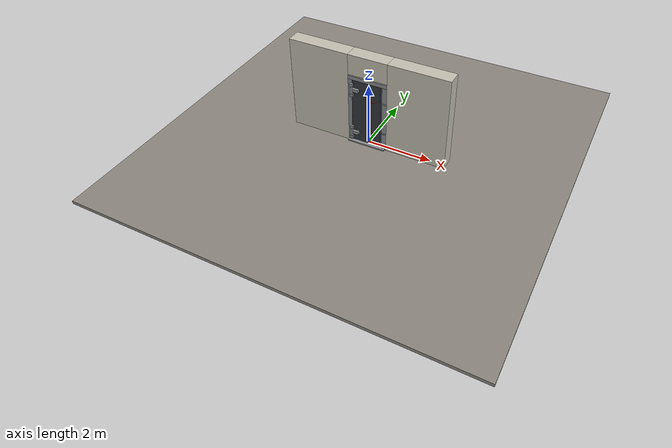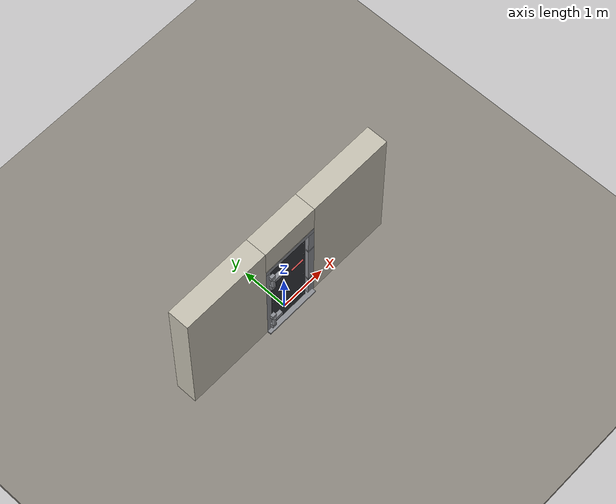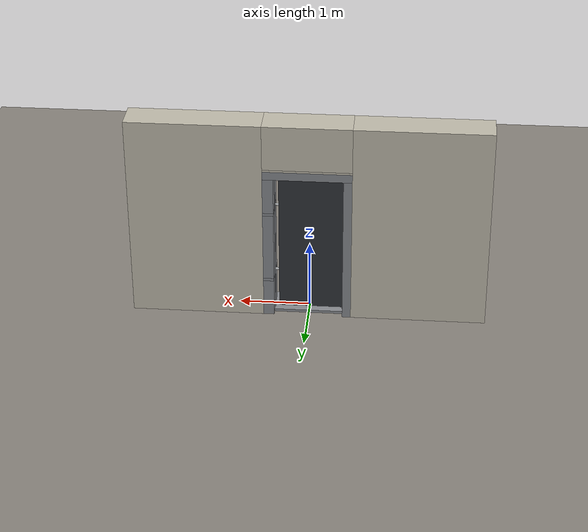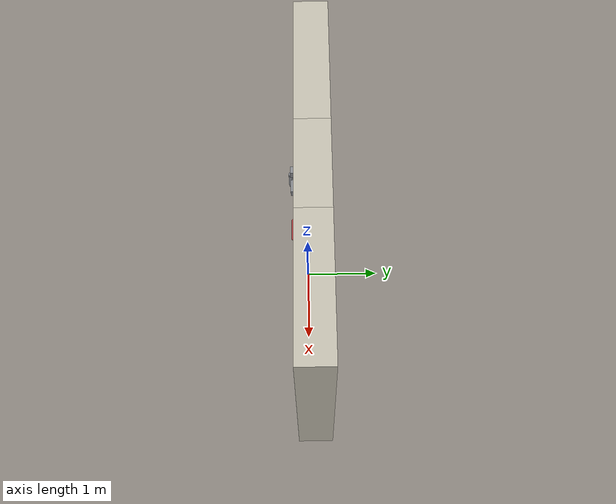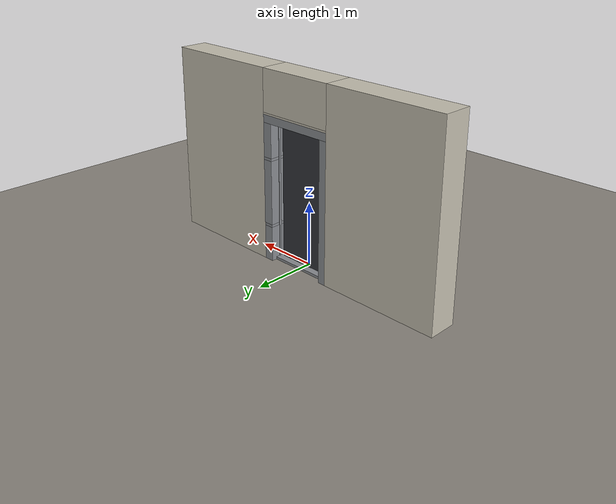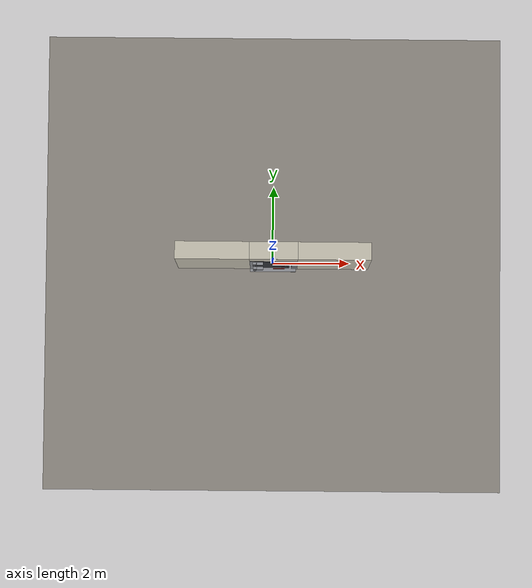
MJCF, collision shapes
<?xml version="1.0" ?>
<mujoco model="db0124_vault_full">
  <compiler angle="radian" meshdir="../../hardware" texturedir="../../textures" autolimits="true" inertiafromgeom="false"/>
  <option timestep="0.002" integrator="implicitfast" cone="elliptic" impratio="10" noslip_iterations="3">
    <flag multiccd="enable"/>
  </option>
  <size memory="16M"/>
  <default>
    <geom condim="4" solref="0.005 1" solimp="0.95 0.99 0.001"/>
    <joint solreflimit="0.005 1" solimplimit="0.95 0.99 0.001"/>
    <tendon solreflimit="0.005 1"/>
    <equality solref="0.002 1"/>
  </default>
  <visual>
    <headlight ambient="0.4 0.4 0.4" diffuse="0.7 0.7 0.7" specular="0.2 0.2 0.2"/>
    <quality shadowsize="4096"/>
    <map znear="0.01" zfar="60"/>
  </visual>
  <asset>
    <mesh name="lever_c7a1f2892f" file="lever_c7a1f2892f.obj"/>
    <material name="mat_floor" rgba="0.55 0.53 0.5 1" specular="0.2" shininess="0.15" reflectance="0"/>
    <material name="mat_wall" rgba="0.78 0.76 0.7 1" specular="0.2" shininess="0.1" reflectance="0"/>
    <material name="mat_leaf" rgba="0.2 0.21 0.23 1" specular="0.23" shininess="0.6" reflectance="0.02"/>
    <material name="mat_rivet" rgba="0.55 0.56 0.58 1" specular="0.8" shininess="0.55" reflectance="0.4"/>
    <material name="mat_op_nickel_satin" rgba="0.72 0.7 0.66 1" specular="0.8" shininess="0.65" reflectance="0.4"/>
    <material name="mat_vault_bolt" rgba="0.75 0.76 0.77 1" specular="0.8" shininess="0.65" reflectance="0.4"/>
    <material name="mat_frame" rgba="0.55 0.56 0.58 1" specular="0.8" shininess="0.55" reflectance="0.4"/>
    <material name="mat_seal" rgba="0.1 0.1 0.1 1" specular="0.2" shininess="0.1" reflectance="0"/>
    <material name="mat_hinge" rgba="0.55 0.56 0.58 1" specular="0.8" shininess="0.55" reflectance="0.4"/>
    <texture name="skybox" type="skybox" builtin="gradient" rgb1="0.6 0.7 0.85" rgb2="0.9 0.92 0.95" width="256" height="256"/>
  </asset>
  <worldbody>
    <light name="sun" pos="1.5 -2.5 4" dir="-0.3 0.5 -0.8" directional="true" diffuse="0.8 0.8 0.8" specular="0.3 0.3 0.3" castshadow="true"/>
    <light name="fill" pos="-1.5 2.5 3" dir="0.3 -0.5 -0.7" directional="true" diffuse="0.35 0.35 0.4" castshadow="false"/>
    <camera name="robot_view" pos="0 -2.579375 1.829625" xyaxes="1 0 0 0 0.26963 0.962964" fovy="52"/>
    <camera name="far_view" pos="0 2.739375 1.829625" xyaxes="-1 0 0 0 -0.26963 0.962964" fovy="52"/>
    <camera name="iso" pos="2.021125 -2.153875 2.255125" xyaxes="0.741536 0.670913 0 -0.242917 0.268487 0.932151" fovy="46"/>
    <camera name="detail_handle" pos="0.234 -0.985 0.855" xyaxes="0.97561 0.219512 0 -0.070934 0.315262 0.94635" fovy="38"/>
    <geom name="floor" type="box" size="6 6 0.05" pos="0 0 -0.05" material="mat_floor" group="0" contype="1" conaffinity="1" friction="0.8 0.005 0.0001" density="2400"/>
    <geom name="wall_left" type="box" size="0.949 0.225 1.485" pos="-1.551 0.08 1.485" material="mat_wall" group="0" contype="1" conaffinity="1" friction="0.6 0.005 0.0001" density="800"/>
    <geom name="wall_right" type="box" size="0.934 0.225 1.485" pos="1.566 0.08 1.485" material="mat_wall" group="0" contype="1" conaffinity="1" friction="0.6 0.005 0.0001" density="800"/>
    <geom name="wall_header" type="box" size="0.617 0.225 0.325" pos="0.015 0.08 2.645" material="mat_wall" group="0" contype="1" conaffinity="1" friction="0.6 0.005 0.0001" density="800"/>
    <geom name="jamb_hinge" type="box" size="0.06 0.225 1.085" pos="-0.542 0.08 1.085" material="mat_frame" group="0" contype="1" conaffinity="1" friction="0.6 0.005 0.0001" density="300"/>
    <geom name="strike_575_wall_n" type="box" size="0.075 0.1435 0.021" pos="0.557 0.1615 0.575" material="mat_frame" group="0" contype="1" conaffinity="1" friction="0.6 0.005 0.0001" density="300"/>
    <geom name="strike_575_wall_p" type="box" size="0.075 0.0635 0.021" pos="0.557 -0.0815 0.575" material="mat_frame" group="0" contype="1" conaffinity="1" friction="0.6 0.005 0.0001" density="300"/>
    <geom name="strike_575_back" type="box" size="0.02 0.018 0.021" pos="0.612 0 0.575" material="mat_frame" group="0" contype="1" conaffinity="1" friction="0.6 0.005 0.0001" density="300"/>
    <geom name="strike_1625_wall_n" type="box" size="0.075 0.1435 0.021" pos="0.557 0.1615 1.625" material="mat_frame" group="0" contype="1" conaffinity="1" friction="0.6 0.005 0.0001" density="300"/>
    <geom name="strike_1625_wall_p" type="box" size="0.075 0.0635 0.021" pos="0.557 -0.0815 1.625" material="mat_frame" group="0" contype="1" conaffinity="1" friction="0.6 0.005 0.0001" density="300"/>
    <geom name="strike_1625_back" type="box" size="0.02 0.018 0.021" pos="0.612 0 1.625" material="mat_frame" group="0" contype="1" conaffinity="1" friction="0.6 0.005 0.0001" density="300"/>
    <geom name="jamb_strike_0" type="box" size="0.075 0.225 0.277" pos="0.557 0.08 0.277" material="mat_frame" group="0" contype="1" conaffinity="1" friction="0.6 0.005 0.0001" density="300"/>
    <geom name="jamb_strike_1" type="box" size="0.075 0.225 0.504" pos="0.557 0.08 1.1" material="mat_frame" group="0" contype="1" conaffinity="1" friction="0.6 0.005 0.0001" density="300"/>
    <geom name="jamb_strike_2" type="box" size="0.075 0.225 0.262" pos="0.557 0.08 1.908" material="mat_frame" group="0" contype="1" conaffinity="1" friction="0.6 0.005 0.0001" density="300"/>
    <geom name="jamb_head" type="box" size="0.617 0.225 0.06" pos="0.015 0.08 2.23" material="mat_frame" group="0" contype="1" conaffinity="1" friction="0.6 0.005 0.0001" density="300"/>
    <geom name="head_stud" type="box" size="0.617 0.225 0.015" pos="0.015 0.08 2.305" material="mat_wall" group="0" contype="1" conaffinity="1" friction="0.6 0.005 0.0001" density="500"/>
    <geom name="stop_hinge" type="box" size="0.0055 0.016 1.085" pos="-0.4765 0.1415 1.085" material="mat_frame" group="0" contype="1" conaffinity="1" friction="0.6 0.005 0.0001" density="300"/>
    <geom name="stop_strike" type="box" size="0.0055 0.016 1.085" pos="0.4765 0.1415 1.085" material="mat_frame" group="0" contype="1" conaffinity="1" friction="0.6 0.005 0.0001" density="300"/>
    <geom name="stop_head" type="box" size="0.482 0.016 0.0055" pos="0 0.1415 2.1645" material="mat_frame" group="0" contype="1" conaffinity="1" friction="0.6 0.005 0.0001" density="300"/>
    <geom name="seal_hinge" type="box" size="0.004 0.006 1.085" pos="-0.479 0.131 1.085" material="mat_seal" group="1" contype="0" conaffinity="0" density="1100"/>
    <geom name="seal_strike" type="box" size="0.004 0.006 1.085" pos="0.479 0.131 1.085" material="mat_seal" group="1" contype="0" conaffinity="0" density="1100"/>
    <geom name="seal_head" type="box" size="0.462 0.006 0.008" pos="0 0.131 2.158" material="mat_seal" group="1" contype="0" conaffinity="0" density="1100"/>
    <geom name="sill_step" type="box" size="0.602 0.225 0.02" pos="0 0 0.02" material="mat_frame" group="0" contype="1" conaffinity="1" friction="0.6 0.005 0.0001" density="7850"/>
    <geom name="hinge_0_bracket_b" type="box" size="0.05 0.0325 0.05" pos="-0.476 -0.1775 0.18" material="mat_hinge" group="1" contype="0" conaffinity="0" density="7850"/>
    <geom name="hinge_0_bracket_t" type="box" size="0.05 0.0325 0.05" pos="-0.476 -0.1775 0.52" material="mat_hinge" group="1" contype="0" conaffinity="0" density="7850"/>
    <geom name="hinge_1_bracket_b" type="box" size="0.05 0.0325 0.05" pos="-0.476 -0.1775 1.68" material="mat_hinge" group="1" contype="0" conaffinity="0" density="7850"/>
    <geom name="hinge_1_bracket_t" type="box" size="0.05 0.0325 0.05" pos="-0.476 -0.1775 2.02" material="mat_hinge" group="1" contype="0" conaffinity="0" density="7850"/>
    <site name="approach_point" pos="0 -1.5 0" quat="1 0 0 0" size="0.05" rgba="0.2 0.9 0.2 0.5" group="4"/>
    <site name="goal_point" pos="0 1.5 0" quat="1 0 0 0" size="0.05" rgba="0.2 0.9 0.2 0.5" group="4"/>
    <site name="door_plane_center" pos="0 0 1.085" quat="1 0 0 0" size="0.02" rgba="0.2 0.9 0.2 0.5" group="4"/>
    <body name="leaf" pos="-0.482 0 0">
      <inertial pos="0.443935 -0.00555 1.1" mass="1462.637549" quat="0.491883 0.507987 -0.491883 0.507987" diaginertia="111.298737009 555.291125902 649.230322611"/>
      <joint name="leaf_hinge" type="hinge" axis="0 0 -1" pos="0.006 -0.19 0" limited="true" range="0 1.745329" solreflimit="0.02 1" damping="0.298832" frictionloss="52.896841" armature="0.5"/>
      <geom name="leaf_slab" type="box" size="0.45 0.125 1.05" pos="0.456 0 1.1" material="mat_leaf" group="0" contype="1" conaffinity="1" friction="0.45 0.005 0.0001" density="1"/>
      <geom name="leaf_rivet_0_0" type="sphere" size="0.012" pos="0.056 -0.125 0.15" material="mat_rivet" group="2" contype="0" conaffinity="0" density="7850"/>
      <geom name="leaf_rivet_0_1" type="sphere" size="0.012" pos="0.856 -0.125 0.15" material="mat_rivet" group="2" contype="0" conaffinity="0" density="7850"/>
      <geom name="leaf_rivet_1_0" type="sphere" size="0.012" pos="0.056 -0.125 0.53" material="mat_rivet" group="2" contype="0" conaffinity="0" density="7850"/>
      <geom name="leaf_rivet_1_1" type="sphere" size="0.012" pos="0.856 -0.125 0.53" material="mat_rivet" group="2" contype="0" conaffinity="0" density="7850"/>
      <geom name="leaf_rivet_2_0" type="sphere" size="0.012" pos="0.056 -0.125 0.91" material="mat_rivet" group="2" contype="0" conaffinity="0" density="7850"/>
      <geom name="leaf_rivet_2_1" type="sphere" size="0.012" pos="0.856 -0.125 0.91" material="mat_rivet" group="2" contype="0" conaffinity="0" density="7850"/>
      <geom name="leaf_rivet_3_0" type="sphere" size="0.012" pos="0.056 -0.125 1.29" material="mat_rivet" group="2" contype="0" conaffinity="0" density="7850"/>
      <geom name="leaf_rivet_3_1" type="sphere" size="0.012" pos="0.856 -0.125 1.29" material="mat_rivet" group="2" contype="0" conaffinity="0" density="7850"/>
      <geom name="leaf_rivet_4_0" type="sphere" size="0.012" pos="0.056 -0.125 1.67" material="mat_rivet" group="2" contype="0" conaffinity="0" density="7850"/>
      <geom name="leaf_rivet_4_1" type="sphere" size="0.012" pos="0.856 -0.125 1.67" material="mat_rivet" group="2" contype="0" conaffinity="0" density="7850"/>
      <geom name="leaf_rivet_5_0" type="sphere" size="0.012" pos="0.056 -0.125 2.05" material="mat_rivet" group="2" contype="0" conaffinity="0" density="7850"/>
      <geom name="leaf_rivet_5_1" type="sphere" size="0.012" pos="0.856 -0.125 2.05" material="mat_rivet" group="2" contype="0" conaffinity="0" density="7850"/>
      <geom name="hinge_0" type="cylinder" size="0.04 0.12" pos="0.006 -0.19 0.35" material="mat_hinge" group="1" contype="0" conaffinity="0" density="7850"/>
      <geom name="hinge_0_arm" type="box" size="0.11 0.04 0.05" pos="0.116 -0.165 0.35" material="mat_hinge" group="1" contype="0" conaffinity="0" density="7850"/>
      <geom name="hinge_1" type="cylinder" size="0.04 0.12" pos="0.006 -0.19 1.85" material="mat_hinge" group="1" contype="0" conaffinity="0" density="7850"/>
      <geom name="hinge_1_arm" type="box" size="0.11 0.04 0.05" pos="0.116 -0.165 1.85" material="mat_hinge" group="1" contype="0" conaffinity="0" density="7850"/>
      <body name="dog_0" pos="0.786 0 0.575">
        <inertial pos="-0.138181 -0.177433 0" mass="4.666646" quat="-0.044336 0 0 0.999017" diaginertia="0.001676913 0.056977311 0.05779918"/>
        <joint name="dog_0_hinge" type="hinge" axis="0 -1 0" limited="true" range="0 1.5708" damping="1" frictionloss="6" armature="0.005"/>
        <geom name="dog_0_lever" type="mesh" mesh="lever_c7a1f2892f" pos="0 -0.125 0" quat="0.707107 0.707107 0 0" material="mat_op_nickel_satin" group="1" contype="0" conaffinity="0" density="7800"/>
        <geom name="dog_0_lever_col" type="capsule" size="0.015 0.14" pos="-0.15 -0.185 0" quat="0.707107 0 0.707107 0" material="mat_op_nickel_satin" group="3" contype="1" conaffinity="1" rgba="0.8 0.3 0.3 0.25" friction="0.7 0.01 0.0001" density="7800"/>
        <site name="dog_0_grip" pos="-0.25 -0.185 0" quat="1 0 0 0" size="0.012" rgba="0.2 0.9 0.2 0.5" group="4"/>
      </body>
      <body name="bolt_0" pos="0.906 0 0.575">
        <inertial pos="0.002 0 0" mass="1.22058" quat="0 0 0.707107 0.707107" diaginertia="0.000152786 0.003895505 0.003895505"/>
        <joint name="bolt_0_slide" type="slide" axis="-1 0 0" limited="true" range="0 0.104" damping="20" frictionloss="25" armature="0.1"/>
        <geom name="bolt_0_geom" type="capsule" size="0.016 0.086" pos="0.002 0 0" quat="0.707107 0 0.707107 0" material="mat_vault_bolt" group="0" contype="1" conaffinity="1" friction="0.3 0.005 0.0001" density="7850"/>
      </body>
      <body name="dog_1" pos="0.786 0 1.625">
        <inertial pos="-0.138181 -0.177433 0" mass="4.666646" quat="-0.044336 0 0 0.999017" diaginertia="0.001676913 0.056977311 0.05779918"/>
        <joint name="dog_1_hinge" type="hinge" axis="0 -1 0" limited="true" range="0 1.5708" damping="1" frictionloss="6" armature="0.005"/>
        <geom name="dog_1_lever" type="mesh" mesh="lever_c7a1f2892f" pos="0 -0.125 0" quat="0.707107 0.707107 0 0" material="mat_op_nickel_satin" group="1" contype="0" conaffinity="0" density="7800"/>
        <geom name="dog_1_lever_col" type="capsule" size="0.015 0.14" pos="-0.15 -0.185 0" quat="0.707107 0 0.707107 0" material="mat_op_nickel_satin" group="3" contype="1" conaffinity="1" rgba="0.8 0.3 0.3 0.25" friction="0.7 0.01 0.0001" density="7800"/>
        <site name="dog_1_grip" pos="-0.25 -0.185 0" quat="1 0 0 0" size="0.012" rgba="0.2 0.9 0.2 0.5" group="4"/>
      </body>
      <body name="bolt_1" pos="0.906 0 1.625">
        <inertial pos="0.002 0 0" mass="1.22058" quat="0 0 0.707107 0.707107" diaginertia="0.000152786 0.003895505 0.003895505"/>
        <joint name="bolt_1_slide" type="slide" axis="-1 0 0" limited="true" range="0 0.104" damping="20" frictionloss="25" armature="0.1"/>
        <geom name="bolt_1_geom" type="capsule" size="0.016 0.086" pos="0.002 0 0" quat="0.707107 0 0.707107 0" material="mat_vault_bolt" group="0" contype="1" conaffinity="1" friction="0.3 0.005 0.0001" density="7850"/>
      </body>
    </body>
  </worldbody>
  <equality>
    <joint name="lever_bolt_0" joint1="bolt_0_slide" joint2="dog_0_hinge" polycoef="0 0.066208 0 0 0" active="true"/>
    <joint name="lever_bolt_1" joint1="bolt_1_slide" joint2="dog_1_hinge" polycoef="0 0.066208 0 0 0" active="true"/>
  </equality>
  <sensor>
    <jointpos name="leaf_hinge_pos" joint="leaf_hinge"/>
    <jointvel name="leaf_hinge_vel" joint="leaf_hinge"/>
    <jointpos name="dog_0_hinge_pos" joint="dog_0_hinge"/>
    <jointvel name="dog_0_hinge_vel" joint="dog_0_hinge"/>
    <jointpos name="bolt_0_slide_pos" joint="bolt_0_slide"/>
    <jointvel name="bolt_0_slide_vel" joint="bolt_0_slide"/>
    <jointpos name="dog_1_hinge_pos" joint="dog_1_hinge"/>
    <jointvel name="dog_1_hinge_vel" joint="dog_1_hinge"/>
    <jointpos name="bolt_1_slide_pos" joint="bolt_1_slide"/>
    <jointvel name="bolt_1_slide_vel" joint="bolt_1_slide"/>
  </sensor>
</mujoco>
